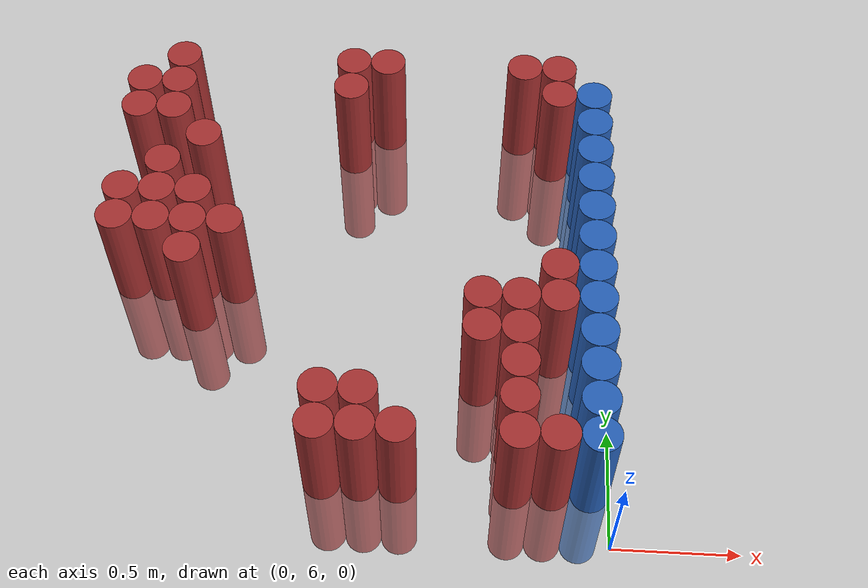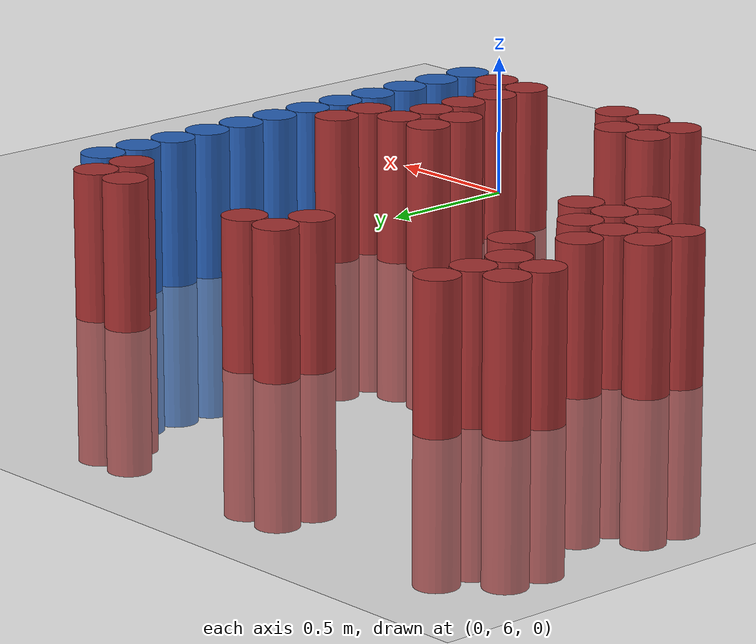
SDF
<sdf version="1.6">
 <world name="default">
  <model name="ground_plane">
   <static>1</static>
   <link name="link">
    <collision name="collision">
     <geometry><plane><normal>0 0 1</normal><size>100 100</size></plane></geometry>
     <surface><friction><ode><mu>100</mu><mu2>50</mu2></ode></friction></surface>
    </collision>
    <visual name="visual">
     <cast_shadows>0</cast_shadows>
     <geometry><plane><normal>0 0 1</normal><size>100 100</size></plane></geometry>
     <material>
      <script><uri>file://media/materials/scripts/gazebo.material</uri><name>Gazebo/Grey</name></script>
     </material>
    </visual>
   </link>
  </model>
  <model name="unit_cylinder_217">
   <static>1</static>
   <pose>-2.025000 7.125000 0.000000 0.000000 0.000000 0.000000</pose>
   <link name="link">
    <inertial>
     <mass>1</mass>
     <inertia><ixx>0.145833</ixx><ixy>0</ixy><ixz>0</ixz><iyy>0.145833</iyy><iyz>0</iyz><izz>0.125</izz></inertia>
    </inertial>
    <collision name="collision">
     <geometry><cylinder><radius>0.075000</radius><length>1</length></cylinder></geometry>
    </collision>
    <visual name="visual">
     <geometry><cylinder><radius>0.075000</radius><length>1</length></cylinder></geometry>
     <material>
      <ambient>0.648000 0.192000 0.192000 1</ambient>
      <diffuse>0.648000 0.192000 0.192000 1</diffuse>
     </material>
     <material>
      <script><name>Gazebo/Grey</name><uri>file://media/materials/scripts/gazebo.material</uri></script>
     </material>
    </visual>
   </link>
  </model>
  <model name="unit_cylinder_218">
   <static>1</static>
   <pose>-2.025000 7.275000 0.000000 0.000000 0.000000 0.000000</pose>
   <link name="link">
    <inertial>
     <mass>1</mass>
     <inertia><ixx>0.145833</ixx><ixy>0</ixy><ixz>0</ixz><iyy>0.145833</iyy><iyz>0</iyz><izz>0.125</izz></inertia>
    </inertial>
    <collision name="collision">
     <geometry><cylinder><radius>0.075000</radius><length>1</length></cylinder></geometry>
    </collision>
    <visual name="visual">
     <geometry><cylinder><radius>0.075000</radius><length>1</length></cylinder></geometry>
     <material>
      <ambient>0.648000 0.192000 0.192000 1</ambient>
      <diffuse>0.648000 0.192000 0.192000 1</diffuse>
     </material>
     <material>
      <script><name>Gazebo/Grey</name><uri>file://media/materials/scripts/gazebo.material</uri></script>
     </material>
    </visual>
   </link>
  </model>
  <model name="unit_cylinder_219">
   <static>1</static>
   <pose>-2.025000 7.725000 0.000000 0.000000 0.000000 0.000000</pose>
   <link name="link">
    <inertial>
     <mass>1</mass>
     <inertia><ixx>0.145833</ixx><ixy>0</ixy><ixz>0</ixz><iyy>0.145833</iyy><iyz>0</iyz><izz>0.125</izz></inertia>
    </inertial>
    <collision name="collision">
     <geometry><cylinder><radius>0.075000</radius><length>1</length></cylinder></geometry>
    </collision>
    <visual name="visual">
     <geometry><cylinder><radius>0.075000</radius><length>1</length></cylinder></geometry>
     <material>
      <ambient>0.648000 0.192000 0.192000 1</ambient>
      <diffuse>0.648000 0.192000 0.192000 1</diffuse>
     </material>
     <material>
      <script><name>Gazebo/Grey</name><uri>file://media/materials/scripts/gazebo.material</uri></script>
     </material>
    </visual>
   </link>
  </model>
  <model name="unit_cylinder_220">
   <static>1</static>
   <pose>-2.025000 7.875000 0.000000 0.000000 0.000000 0.000000</pose>
   <link name="link">
    <inertial>
     <mass>1</mass>
     <inertia><ixx>0.145833</ixx><ixy>0</ixy><ixz>0</ixz><iyy>0.145833</iyy><iyz>0</iyz><izz>0.125</izz></inertia>
    </inertial>
    <collision name="collision">
     <geometry><cylinder><radius>0.075000</radius><length>1</length></cylinder></geometry>
    </collision>
    <visual name="visual">
     <geometry><cylinder><radius>0.075000</radius><length>1</length></cylinder></geometry>
     <material>
      <ambient>0.648000 0.192000 0.192000 1</ambient>
      <diffuse>0.648000 0.192000 0.192000 1</diffuse>
     </material>
     <material>
      <script><name>Gazebo/Grey</name><uri>file://media/materials/scripts/gazebo.material</uri></script>
     </material>
    </visual>
   </link>
  </model>
  <model name="unit_cylinder_221">
   <static>1</static>
   <pose>-1.875000 7.125000 0.000000 0.000000 0.000000 0.000000</pose>
   <link name="link">
    <inertial>
     <mass>1</mass>
     <inertia><ixx>0.145833</ixx><ixy>0</ixy><ixz>0</ixz><iyy>0.145833</iyy><iyz>0</iyz><izz>0.125</izz></inertia>
    </inertial>
    <collision name="collision">
     <geometry><cylinder><radius>0.075000</radius><length>1</length></cylinder></geometry>
    </collision>
    <visual name="visual">
     <geometry><cylinder><radius>0.075000</radius><length>1</length></cylinder></geometry>
     <material>
      <ambient>0.648000 0.192000 0.192000 1</ambient>
      <diffuse>0.648000 0.192000 0.192000 1</diffuse>
     </material>
     <material>
      <script><name>Gazebo/Grey</name><uri>file://media/materials/scripts/gazebo.material</uri></script>
     </material>
    </visual>
   </link>
  </model>
  <model name="unit_cylinder_222">
   <static>1</static>
   <pose>-1.875000 7.275000 0.000000 0.000000 0.000000 0.000000</pose>
   <link name="link">
    <inertial>
     <mass>1</mass>
     <inertia><ixx>0.145833</ixx><ixy>0</ixy><ixz>0</ixz><iyy>0.145833</iyy><iyz>0</iyz><izz>0.125</izz></inertia>
    </inertial>
    <collision name="collision">
     <geometry><cylinder><radius>0.075000</radius><length>1</length></cylinder></geometry>
    </collision>
    <visual name="visual">
     <geometry><cylinder><radius>0.075000</radius><length>1</length></cylinder></geometry>
     <material>
      <ambient>0.648000 0.192000 0.192000 1</ambient>
      <diffuse>0.648000 0.192000 0.192000 1</diffuse>
     </material>
     <material>
      <script><name>Gazebo/Grey</name><uri>file://media/materials/scripts/gazebo.material</uri></script>
     </material>
    </visual>
   </link>
  </model>
  <model name="unit_cylinder_223">
   <static>1</static>
   <pose>-1.875000 7.425000 0.000000 0.000000 0.000000 0.000000</pose>
   <link name="link">
    <inertial>
     <mass>1</mass>
     <inertia><ixx>0.145833</ixx><ixy>0</ixy><ixz>0</ixz><iyy>0.145833</iyy><iyz>0</iyz><izz>0.125</izz></inertia>
    </inertial>
    <collision name="collision">
     <geometry><cylinder><radius>0.075000</radius><length>1</length></cylinder></geometry>
    </collision>
    <visual name="visual">
     <geometry><cylinder><radius>0.075000</radius><length>1</length></cylinder></geometry>
     <material>
      <ambient>0.648000 0.192000 0.192000 1</ambient>
      <diffuse>0.648000 0.192000 0.192000 1</diffuse>
     </material>
     <material>
      <script><name>Gazebo/Grey</name><uri>file://media/materials/scripts/gazebo.material</uri></script>
     </material>
    </visual>
   </link>
  </model>
  <model name="unit_cylinder_224">
   <static>1</static>
   <pose>-1.875000 7.725000 0.000000 0.000000 0.000000 0.000000</pose>
   <link name="link">
    <inertial>
     <mass>1</mass>
     <inertia><ixx>0.145833</ixx><ixy>0</ixy><ixz>0</ixz><iyy>0.145833</iyy><iyz>0</iyz><izz>0.125</izz></inertia>
    </inertial>
    <collision name="collision">
     <geometry><cylinder><radius>0.075000</radius><length>1</length></cylinder></geometry>
    </collision>
    <visual name="visual">
     <geometry><cylinder><radius>0.075000</radius><length>1</length></cylinder></geometry>
     <material>
      <ambient>0.648000 0.192000 0.192000 1</ambient>
      <diffuse>0.648000 0.192000 0.192000 1</diffuse>
     </material>
     <material>
      <script><name>Gazebo/Grey</name><uri>file://media/materials/scripts/gazebo.material</uri></script>
     </material>
    </visual>
   </link>
  </model>
  <model name="unit_cylinder_225">
   <static>1</static>
   <pose>-1.875000 7.875000 0.000000 0.000000 0.000000 0.000000</pose>
   <link name="link">
    <inertial>
     <mass>1</mass>
     <inertia><ixx>0.145833</ixx><ixy>0</ixy><ixz>0</ixz><iyy>0.145833</iyy><iyz>0</iyz><izz>0.125</izz></inertia>
    </inertial>
    <collision name="collision">
     <geometry><cylinder><radius>0.075000</radius><length>1</length></cylinder></geometry>
    </collision>
    <visual name="visual">
     <geometry><cylinder><radius>0.075000</radius><length>1</length></cylinder></geometry>
     <material>
      <ambient>0.648000 0.192000 0.192000 1</ambient>
      <diffuse>0.648000 0.192000 0.192000 1</diffuse>
     </material>
     <material>
      <script><name>Gazebo/Grey</name><uri>file://media/materials/scripts/gazebo.material</uri></script>
     </material>
    </visual>
   </link>
  </model>
  <model name="unit_cylinder_226">
   <static>1</static>
   <pose>-1.875000 8.025000 0.000000 0.000000 0.000000 0.000000</pose>
   <link name="link">
    <inertial>
     <mass>1</mass>
     <inertia><ixx>0.145833</ixx><ixy>0</ixy><ixz>0</ixz><iyy>0.145833</iyy><iyz>0</iyz><izz>0.125</izz></inertia>
    </inertial>
    <collision name="collision">
     <geometry><cylinder><radius>0.075000</radius><length>1</length></cylinder></geometry>
    </collision>
    <visual name="visual">
     <geometry><cylinder><radius>0.075000</radius><length>1</length></cylinder></geometry>
     <material>
      <ambient>0.648000 0.192000 0.192000 1</ambient>
      <diffuse>0.648000 0.192000 0.192000 1</diffuse>
     </material>
     <material>
      <script><name>Gazebo/Grey</name><uri>file://media/materials/scripts/gazebo.material</uri></script>
     </material>
    </visual>
   </link>
  </model>
  <model name="unit_cylinder_227">
   <static>1</static>
   <pose>-1.725000 6.975000 0.000000 0.000000 0.000000 0.000000</pose>
   <link name="link">
    <inertial>
     <mass>1</mass>
     <inertia><ixx>0.145833</ixx><ixy>0</ixy><ixz>0</ixz><iyy>0.145833</iyy><iyz>0</iyz><izz>0.125</izz></inertia>
    </inertial>
    <collision name="collision">
     <geometry><cylinder><radius>0.075000</radius><length>1</length></cylinder></geometry>
    </collision>
    <visual name="visual">
     <geometry><cylinder><radius>0.075000</radius><length>1</length></cylinder></geometry>
     <material>
      <ambient>0.648000 0.192000 0.192000 1</ambient>
      <diffuse>0.648000 0.192000 0.192000 1</diffuse>
     </material>
     <material>
      <script><name>Gazebo/Grey</name><uri>file://media/materials/scripts/gazebo.material</uri></script>
     </material>
    </visual>
   </link>
  </model>
  <model name="unit_cylinder_228">
   <static>1</static>
   <pose>-1.725000 7.125000 0.000000 0.000000 0.000000 0.000000</pose>
   <link name="link">
    <inertial>
     <mass>1</mass>
     <inertia><ixx>0.145833</ixx><ixy>0</ixy><ixz>0</ixz><iyy>0.145833</iyy><iyz>0</iyz><izz>0.125</izz></inertia>
    </inertial>
    <collision name="collision">
     <geometry><cylinder><radius>0.075000</radius><length>1</length></cylinder></geometry>
    </collision>
    <visual name="visual">
     <geometry><cylinder><radius>0.075000</radius><length>1</length></cylinder></geometry>
     <material>
      <ambient>0.648000 0.192000 0.192000 1</ambient>
      <diffuse>0.648000 0.192000 0.192000 1</diffuse>
     </material>
     <material>
      <script><name>Gazebo/Grey</name><uri>file://media/materials/scripts/gazebo.material</uri></script>
     </material>
    </visual>
   </link>
  </model>
  <model name="unit_cylinder_229">
   <static>1</static>
   <pose>-1.725000 7.275000 0.000000 0.000000 0.000000 0.000000</pose>
   <link name="link">
    <inertial>
     <mass>1</mass>
     <inertia><ixx>0.145833</ixx><ixy>0</ixy><ixz>0</ixz><iyy>0.145833</iyy><iyz>0</iyz><izz>0.125</izz></inertia>
    </inertial>
    <collision name="collision">
     <geometry><cylinder><radius>0.075000</radius><length>1</length></cylinder></geometry>
    </collision>
    <visual name="visual">
     <geometry><cylinder><radius>0.075000</radius><length>1</length></cylinder></geometry>
     <material>
      <ambient>0.648000 0.192000 0.192000 1</ambient>
      <diffuse>0.648000 0.192000 0.192000 1</diffuse>
     </material>
     <material>
      <script><name>Gazebo/Grey</name><uri>file://media/materials/scripts/gazebo.material</uri></script>
     </material>
    </visual>
   </link>
  </model>
  <model name="unit_cylinder_230">
   <static>1</static>
   <pose>-1.725000 7.575000 0.000000 0.000000 0.000000 0.000000</pose>
   <link name="link">
    <inertial>
     <mass>1</mass>
     <inertia><ixx>0.145833</ixx><ixy>0</ixy><ixz>0</ixz><iyy>0.145833</iyy><iyz>0</iyz><izz>0.125</izz></inertia>
    </inertial>
    <collision name="collision">
     <geometry><cylinder><radius>0.075000</radius><length>1</length></cylinder></geometry>
    </collision>
    <visual name="visual">
     <geometry><cylinder><radius>0.075000</radius><length>1</length></cylinder></geometry>
     <material>
      <ambient>0.648000 0.192000 0.192000 1</ambient>
      <diffuse>0.648000 0.192000 0.192000 1</diffuse>
     </material>
     <material>
      <script><name>Gazebo/Grey</name><uri>file://media/materials/scripts/gazebo.material</uri></script>
     </material>
    </visual>
   </link>
  </model>
  <model name="unit_cylinder_231">
   <static>1</static>
   <pose>-1.575000 7.125000 0.000000 0.000000 0.000000 0.000000</pose>
   <link name="link">
    <inertial>
     <mass>1</mass>
     <inertia><ixx>0.145833</ixx><ixy>0</ixy><ixz>0</ixz><iyy>0.145833</iyy><iyz>0</iyz><izz>0.125</izz></inertia>
    </inertial>
    <collision name="collision">
     <geometry><cylinder><radius>0.075000</radius><length>1</length></cylinder></geometry>
    </collision>
    <visual name="visual">
     <geometry><cylinder><radius>0.075000</radius><length>1</length></cylinder></geometry>
     <material>
      <ambient>0.648000 0.192000 0.192000 1</ambient>
      <diffuse>0.648000 0.192000 0.192000 1</diffuse>
     </material>
     <material>
      <script><name>Gazebo/Grey</name><uri>file://media/materials/scripts/gazebo.material</uri></script>
     </material>
    </visual>
   </link>
  </model>
  <model name="unit_cylinder_239">
   <static>1</static>
   <pose>-1.125000 6.225000 0.000000 0.000000 0.000000 0.000000</pose>
   <link name="link">
    <inertial>
     <mass>1</mass>
     <inertia><ixx>0.145833</ixx><ixy>0</ixy><ixz>0</ixz><iyy>0.145833</iyy><iyz>0</iyz><izz>0.125</izz></inertia>
    </inertial>
    <collision name="collision">
     <geometry><cylinder><radius>0.075000</radius><length>1</length></cylinder></geometry>
    </collision>
    <visual name="visual">
     <geometry><cylinder><radius>0.075000</radius><length>1</length></cylinder></geometry>
     <material>
      <ambient>0.648000 0.192000 0.192000 1</ambient>
      <diffuse>0.648000 0.192000 0.192000 1</diffuse>
     </material>
     <material>
      <script><name>Gazebo/Grey</name><uri>file://media/materials/scripts/gazebo.material</uri></script>
     </material>
    </visual>
   </link>
  </model>
  <model name="unit_cylinder_240">
   <static>1</static>
   <pose>-1.125000 6.375000 0.000000 0.000000 0.000000 0.000000</pose>
   <link name="link">
    <inertial>
     <mass>1</mass>
     <inertia><ixx>0.145833</ixx><ixy>0</ixy><ixz>0</ixz><iyy>0.145833</iyy><iyz>0</iyz><izz>0.125</izz></inertia>
    </inertial>
    <collision name="collision">
     <geometry><cylinder><radius>0.075000</radius><length>1</length></cylinder></geometry>
    </collision>
    <visual name="visual">
     <geometry><cylinder><radius>0.075000</radius><length>1</length></cylinder></geometry>
     <material>
      <ambient>0.648000 0.192000 0.192000 1</ambient>
      <diffuse>0.648000 0.192000 0.192000 1</diffuse>
     </material>
     <material>
      <script><name>Gazebo/Grey</name><uri>file://media/materials/scripts/gazebo.material</uri></script>
     </material>
    </visual>
   </link>
  </model>
  <model name="unit_cylinder_241">
   <static>1</static>
   <pose>-1.125000 7.875000 0.000000 0.000000 0.000000 0.000000</pose>
   <link name="link">
    <inertial>
     <mass>1</mass>
     <inertia><ixx>0.145833</ixx><ixy>0</ixy><ixz>0</ixz><iyy>0.145833</iyy><iyz>0</iyz><izz>0.125</izz></inertia>
    </inertial>
    <collision name="collision">
     <geometry><cylinder><radius>0.075000</radius><length>1</length></cylinder></geometry>
    </collision>
    <visual name="visual">
     <geometry><cylinder><radius>0.075000</radius><length>1</length></cylinder></geometry>
     <material>
      <ambient>0.648000 0.192000 0.192000 1</ambient>
      <diffuse>0.648000 0.192000 0.192000 1</diffuse>
     </material>
     <material>
      <script><name>Gazebo/Grey</name><uri>file://media/materials/scripts/gazebo.material</uri></script>
     </material>
    </visual>
   </link>
  </model>
  <model name="unit_cylinder_242">
   <static>1</static>
   <pose>-1.125000 8.025000 0.000000 0.000000 0.000000 0.000000</pose>
   <link name="link">
    <inertial>
     <mass>1</mass>
     <inertia><ixx>0.145833</ixx><ixy>0</ixy><ixz>0</ixz><iyy>0.145833</iyy><iyz>0</iyz><izz>0.125</izz></inertia>
    </inertial>
    <collision name="collision">
     <geometry><cylinder><radius>0.075000</radius><length>1</length></cylinder></geometry>
    </collision>
    <visual name="visual">
     <geometry><cylinder><radius>0.075000</radius><length>1</length></cylinder></geometry>
     <material>
      <ambient>0.648000 0.192000 0.192000 1</ambient>
      <diffuse>0.648000 0.192000 0.192000 1</diffuse>
     </material>
     <material>
      <script><name>Gazebo/Grey</name><uri>file://media/materials/scripts/gazebo.material</uri></script>
     </material>
    </visual>
   </link>
  </model>
  <model name="unit_cylinder_251">
   <static>1</static>
   <pose>-0.975000 6.225000 0.000000 0.000000 0.000000 0.000000</pose>
   <link name="link">
    <inertial>
     <mass>1</mass>
     <inertia><ixx>0.145833</ixx><ixy>0</ixy><ixz>0</ixz><iyy>0.145833</iyy><iyz>0</iyz><izz>0.125</izz></inertia>
    </inertial>
    <collision name="collision">
     <geometry><cylinder><radius>0.075000</radius><length>1</length></cylinder></geometry>
    </collision>
    <visual name="visual">
     <geometry><cylinder><radius>0.075000</radius><length>1</length></cylinder></geometry>
     <material>
      <ambient>0.648000 0.192000 0.192000 1</ambient>
      <diffuse>0.648000 0.192000 0.192000 1</diffuse>
     </material>
     <material>
      <script><name>Gazebo/Grey</name><uri>file://media/materials/scripts/gazebo.material</uri></script>
     </material>
    </visual>
   </link>
  </model>
  <model name="unit_cylinder_252">
   <static>1</static>
   <pose>-0.975000 6.375000 0.000000 0.000000 0.000000 0.000000</pose>
   <link name="link">
    <inertial>
     <mass>1</mass>
     <inertia><ixx>0.145833</ixx><ixy>0</ixy><ixz>0</ixz><iyy>0.145833</iyy><iyz>0</iyz><izz>0.125</izz></inertia>
    </inertial>
    <collision name="collision">
     <geometry><cylinder><radius>0.075000</radius><length>1</length></cylinder></geometry>
    </collision>
    <visual name="visual">
     <geometry><cylinder><radius>0.075000</radius><length>1</length></cylinder></geometry>
     <material>
      <ambient>0.648000 0.192000 0.192000 1</ambient>
      <diffuse>0.648000 0.192000 0.192000 1</diffuse>
     </material>
     <material>
      <script><name>Gazebo/Grey</name><uri>file://media/materials/scripts/gazebo.material</uri></script>
     </material>
    </visual>
   </link>
  </model>
  <model name="unit_cylinder_253">
   <static>1</static>
   <pose>-0.975000 8.025000 0.000000 0.000000 0.000000 0.000000</pose>
   <link name="link">
    <inertial>
     <mass>1</mass>
     <inertia><ixx>0.145833</ixx><ixy>0</ixy><ixz>0</ixz><iyy>0.145833</iyy><iyz>0</iyz><izz>0.125</izz></inertia>
    </inertial>
    <collision name="collision">
     <geometry><cylinder><radius>0.075000</radius><length>1</length></cylinder></geometry>
    </collision>
    <visual name="visual">
     <geometry><cylinder><radius>0.075000</radius><length>1</length></cylinder></geometry>
     <material>
      <ambient>0.648000 0.192000 0.192000 1</ambient>
      <diffuse>0.648000 0.192000 0.192000 1</diffuse>
     </material>
     <material>
      <script><name>Gazebo/Grey</name><uri>file://media/materials/scripts/gazebo.material</uri></script>
     </material>
    </visual>
   </link>
  </model>
  <model name="unit_cylinder_264">
   <static>1</static>
   <pose>-0.825000 6.225000 0.000000 0.000000 0.000000 0.000000</pose>
   <link name="link">
    <inertial>
     <mass>1</mass>
     <inertia><ixx>0.145833</ixx><ixy>0</ixy><ixz>0</ixz><iyy>0.145833</iyy><iyz>0</iyz><izz>0.125</izz></inertia>
    </inertial>
    <collision name="collision">
     <geometry><cylinder><radius>0.075000</radius><length>1</length></cylinder></geometry>
    </collision>
    <visual name="visual">
     <geometry><cylinder><radius>0.075000</radius><length>1</length></cylinder></geometry>
     <material>
      <ambient>0.648000 0.192000 0.192000 1</ambient>
      <diffuse>0.648000 0.192000 0.192000 1</diffuse>
     </material>
     <material>
      <script><name>Gazebo/Grey</name><uri>file://media/materials/scripts/gazebo.material</uri></script>
     </material>
    </visual>
   </link>
  </model>
  <model name="unit_cylinder_275">
   <static>1</static>
   <pose>-0.525000 6.675000 0.000000 0.000000 0.000000 0.000000</pose>
   <link name="link">
    <inertial>
     <mass>1</mass>
     <inertia><ixx>0.145833</ixx><ixy>0</ixy><ixz>0</ixz><iyy>0.145833</iyy><iyz>0</iyz><izz>0.125</izz></inertia>
    </inertial>
    <collision name="collision">
     <geometry><cylinder><radius>0.075000</radius><length>1</length></cylinder></geometry>
    </collision>
    <visual name="visual">
     <geometry><cylinder><radius>0.075000</radius><length>1</length></cylinder></geometry>
     <material>
      <ambient>0.648000 0.192000 0.192000 1</ambient>
      <diffuse>0.648000 0.192000 0.192000 1</diffuse>
     </material>
     <material>
      <script><name>Gazebo/Grey</name><uri>file://media/materials/scripts/gazebo.material</uri></script>
     </material>
    </visual>
   </link>
  </model>
  <model name="unit_cylinder_276">
   <static>1</static>
   <pose>-0.525000 6.825000 0.000000 0.000000 0.000000 0.000000</pose>
   <link name="link">
    <inertial>
     <mass>1</mass>
     <inertia><ixx>0.145833</ixx><ixy>0</ixy><ixz>0</ixz><iyy>0.145833</iyy><iyz>0</iyz><izz>0.125</izz></inertia>
    </inertial>
    <collision name="collision">
     <geometry><cylinder><radius>0.075000</radius><length>1</length></cylinder></geometry>
    </collision>
    <visual name="visual">
     <geometry><cylinder><radius>0.075000</radius><length>1</length></cylinder></geometry>
     <material>
      <ambient>0.648000 0.192000 0.192000 1</ambient>
      <diffuse>0.648000 0.192000 0.192000 1</diffuse>
     </material>
     <material>
      <script><name>Gazebo/Grey</name><uri>file://media/materials/scripts/gazebo.material</uri></script>
     </material>
    </visual>
   </link>
  </model>
  <model name="unit_cylinder_282">
   <static>1</static>
   <pose>-0.375000 6.225000 0.000000 0.000000 0.000000 0.000000</pose>
   <link name="link">
    <inertial>
     <mass>1</mass>
     <inertia><ixx>0.145833</ixx><ixy>0</ixy><ixz>0</ixz><iyy>0.145833</iyy><iyz>0</iyz><izz>0.125</izz></inertia>
    </inertial>
    <collision name="collision">
     <geometry><cylinder><radius>0.075000</radius><length>1</length></cylinder></geometry>
    </collision>
    <visual name="visual">
     <geometry><cylinder><radius>0.075000</radius><length>1</length></cylinder></geometry>
     <material>
      <ambient>0.648000 0.192000 0.192000 1</ambient>
      <diffuse>0.648000 0.192000 0.192000 1</diffuse>
     </material>
     <material>
      <script><name>Gazebo/Grey</name><uri>file://media/materials/scripts/gazebo.material</uri></script>
     </material>
    </visual>
   </link>
  </model>
  <model name="unit_cylinder_283">
   <static>1</static>
   <pose>-0.375000 6.375000 0.000000 0.000000 0.000000 0.000000</pose>
   <link name="link">
    <inertial>
     <mass>1</mass>
     <inertia><ixx>0.145833</ixx><ixy>0</ixy><ixz>0</ixz><iyy>0.145833</iyy><iyz>0</iyz><izz>0.125</izz></inertia>
    </inertial>
    <collision name="collision">
     <geometry><cylinder><radius>0.075000</radius><length>1</length></cylinder></geometry>
    </collision>
    <visual name="visual">
     <geometry><cylinder><radius>0.075000</radius><length>1</length></cylinder></geometry>
     <material>
      <ambient>0.648000 0.192000 0.192000 1</ambient>
      <diffuse>0.648000 0.192000 0.192000 1</diffuse>
     </material>
     <material>
      <script><name>Gazebo/Grey</name><uri>file://media/materials/scripts/gazebo.material</uri></script>
     </material>
    </visual>
   </link>
  </model>
  <model name="unit_cylinder_284">
   <static>1</static>
   <pose>-0.375000 6.525000 0.000000 0.000000 0.000000 0.000000</pose>
   <link name="link">
    <inertial>
     <mass>1</mass>
     <inertia><ixx>0.145833</ixx><ixy>0</ixy><ixz>0</ixz><iyy>0.145833</iyy><iyz>0</iyz><izz>0.125</izz></inertia>
    </inertial>
    <collision name="collision">
     <geometry><cylinder><radius>0.075000</radius><length>1</length></cylinder></geometry>
    </collision>
    <visual name="visual">
     <geometry><cylinder><radius>0.075000</radius><length>1</length></cylinder></geometry>
     <material>
      <ambient>0.648000 0.192000 0.192000 1</ambient>
      <diffuse>0.648000 0.192000 0.192000 1</diffuse>
     </material>
     <material>
      <script><name>Gazebo/Grey</name><uri>file://media/materials/scripts/gazebo.material</uri></script>
     </material>
    </visual>
   </link>
  </model>
  <model name="unit_cylinder_285">
   <static>1</static>
   <pose>-0.375000 6.675000 0.000000 0.000000 0.000000 0.000000</pose>
   <link name="link">
    <inertial>
     <mass>1</mass>
     <inertia><ixx>0.145833</ixx><ixy>0</ixy><ixz>0</ixz><iyy>0.145833</iyy><iyz>0</iyz><izz>0.125</izz></inertia>
    </inertial>
    <collision name="collision">
     <geometry><cylinder><radius>0.075000</radius><length>1</length></cylinder></geometry>
    </collision>
    <visual name="visual">
     <geometry><cylinder><radius>0.075000</radius><length>1</length></cylinder></geometry>
     <material>
      <ambient>0.648000 0.192000 0.192000 1</ambient>
      <diffuse>0.648000 0.192000 0.192000 1</diffuse>
     </material>
     <material>
      <script><name>Gazebo/Grey</name><uri>file://media/materials/scripts/gazebo.material</uri></script>
     </material>
    </visual>
   </link>
  </model>
  <model name="unit_cylinder_286">
   <static>1</static>
   <pose>-0.375000 6.825000 0.000000 0.000000 0.000000 0.000000</pose>
   <link name="link">
    <inertial>
     <mass>1</mass>
     <inertia><ixx>0.145833</ixx><ixy>0</ixy><ixz>0</ixz><iyy>0.145833</iyy><iyz>0</iyz><izz>0.125</izz></inertia>
    </inertial>
    <collision name="collision">
     <geometry><cylinder><radius>0.075000</radius><length>1</length></cylinder></geometry>
    </collision>
    <visual name="visual">
     <geometry><cylinder><radius>0.075000</radius><length>1</length></cylinder></geometry>
     <material>
      <ambient>0.648000 0.192000 0.192000 1</ambient>
      <diffuse>0.648000 0.192000 0.192000 1</diffuse>
     </material>
     <material>
      <script><name>Gazebo/Grey</name><uri>file://media/materials/scripts/gazebo.material</uri></script>
     </material>
    </visual>
   </link>
  </model>
  <model name="unit_cylinder_287">
   <static>1</static>
   <pose>-0.375000 8.025000 0.000000 0.000000 0.000000 0.000000</pose>
   <link name="link">
    <inertial>
     <mass>1</mass>
     <inertia><ixx>0.145833</ixx><ixy>0</ixy><ixz>0</ixz><iyy>0.145833</iyy><iyz>0</iyz><izz>0.125</izz></inertia>
    </inertial>
    <collision name="collision">
     <geometry><cylinder><radius>0.075000</radius><length>1</length></cylinder></geometry>
    </collision>
    <visual name="visual">
     <geometry><cylinder><radius>0.075000</radius><length>1</length></cylinder></geometry>
     <material>
      <ambient>0.648000 0.192000 0.192000 1</ambient>
      <diffuse>0.648000 0.192000 0.192000 1</diffuse>
     </material>
     <material>
      <script><name>Gazebo/Grey</name><uri>file://media/materials/scripts/gazebo.material</uri></script>
     </material>
    </visual>
   </link>
  </model>
  <model name="unit_cylinder_296">
   <static>1</static>
   <pose>-0.225000 6.225000 0.000000 0.000000 0.000000 0.000000</pose>
   <link name="link">
    <inertial>
     <mass>1</mass>
     <inertia><ixx>0.145833</ixx><ixy>0</ixy><ixz>0</ixz><iyy>0.145833</iyy><iyz>0</iyz><izz>0.125</izz></inertia>
    </inertial>
    <collision name="collision">
     <geometry><cylinder><radius>0.075000</radius><length>1</length></cylinder></geometry>
    </collision>
    <visual name="visual">
     <geometry><cylinder><radius>0.075000</radius><length>1</length></cylinder></geometry>
     <material>
      <ambient>0.648000 0.192000 0.192000 1</ambient>
      <diffuse>0.648000 0.192000 0.192000 1</diffuse>
     </material>
     <material>
      <script><name>Gazebo/Grey</name><uri>file://media/materials/scripts/gazebo.material</uri></script>
     </material>
    </visual>
   </link>
  </model>
  <model name="unit_cylinder_297">
   <static>1</static>
   <pose>-0.225000 6.825000 0.000000 0.000000 0.000000 0.000000</pose>
   <link name="link">
    <inertial>
     <mass>1</mass>
     <inertia><ixx>0.145833</ixx><ixy>0</ixy><ixz>0</ixz><iyy>0.145833</iyy><iyz>0</iyz><izz>0.125</izz></inertia>
    </inertial>
    <collision name="collision">
     <geometry><cylinder><radius>0.075000</radius><length>1</length></cylinder></geometry>
    </collision>
    <visual name="visual">
     <geometry><cylinder><radius>0.075000</radius><length>1</length></cylinder></geometry>
     <material>
      <ambient>0.648000 0.192000 0.192000 1</ambient>
      <diffuse>0.648000 0.192000 0.192000 1</diffuse>
     </material>
     <material>
      <script><name>Gazebo/Grey</name><uri>file://media/materials/scripts/gazebo.material</uri></script>
     </material>
    </visual>
   </link>
  </model>
  <model name="unit_cylinder_298">
   <static>1</static>
   <pose>-0.225000 6.975000 0.000000 0.000000 0.000000 0.000000</pose>
   <link name="link">
    <inertial>
     <mass>1</mass>
     <inertia><ixx>0.145833</ixx><ixy>0</ixy><ixz>0</ixz><iyy>0.145833</iyy><iyz>0</iyz><izz>0.125</izz></inertia>
    </inertial>
    <collision name="collision">
     <geometry><cylinder><radius>0.075000</radius><length>1</length></cylinder></geometry>
    </collision>
    <visual name="visual">
     <geometry><cylinder><radius>0.075000</radius><length>1</length></cylinder></geometry>
     <material>
      <ambient>0.648000 0.192000 0.192000 1</ambient>
      <diffuse>0.648000 0.192000 0.192000 1</diffuse>
     </material>
     <material>
      <script><name>Gazebo/Grey</name><uri>file://media/materials/scripts/gazebo.material</uri></script>
     </material>
    </visual>
   </link>
  </model>
  <model name="unit_cylinder_299">
   <static>1</static>
   <pose>-0.225000 7.875000 0.000000 0.000000 0.000000 0.000000</pose>
   <link name="link">
    <inertial>
     <mass>1</mass>
     <inertia><ixx>0.145833</ixx><ixy>0</ixy><ixz>0</ixz><iyy>0.145833</iyy><iyz>0</iyz><izz>0.125</izz></inertia>
    </inertial>
    <collision name="collision">
     <geometry><cylinder><radius>0.075000</radius><length>1</length></cylinder></geometry>
    </collision>
    <visual name="visual">
     <geometry><cylinder><radius>0.075000</radius><length>1</length></cylinder></geometry>
     <material>
      <ambient>0.648000 0.192000 0.192000 1</ambient>
      <diffuse>0.648000 0.192000 0.192000 1</diffuse>
     </material>
     <material>
      <script><name>Gazebo/Grey</name><uri>file://media/materials/scripts/gazebo.material</uri></script>
     </material>
    </visual>
   </link>
  </model>
  <model name="unit_cylinder_300">
   <static>1</static>
   <pose>-0.225000 8.025000 0.000000 0.000000 0.000000 0.000000</pose>
   <link name="link">
    <inertial>
     <mass>1</mass>
     <inertia><ixx>0.145833</ixx><ixy>0</ixy><ixz>0</ixz><iyy>0.145833</iyy><iyz>0</iyz><izz>0.125</izz></inertia>
    </inertial>
    <collision name="collision">
     <geometry><cylinder><radius>0.075000</radius><length>1</length></cylinder></geometry>
    </collision>
    <visual name="visual">
     <geometry><cylinder><radius>0.075000</radius><length>1</length></cylinder></geometry>
     <material>
      <ambient>0.648000 0.192000 0.192000 1</ambient>
      <diffuse>0.648000 0.192000 0.192000 1</diffuse>
     </material>
     <material>
      <script><name>Gazebo/Grey</name><uri>file://media/materials/scripts/gazebo.material</uri></script>
     </material>
    </visual>
   </link>
  </model>
  <model name="unit_cylinder_311">
   <static>1</static>
   <pose>-0.075000 6.225000 0.000000 0.000000 0.000000 0.000000</pose>
   <link name="link">
    <inertial>
     <mass>1</mass>
     <inertia><ixx>0.145833</ixx><ixy>0</ixy><ixz>0</ixz><iyy>0.145833</iyy><iyz>0</iyz><izz>0.125</izz></inertia>
    </inertial>
    <collision name="collision">
     <geometry><cylinder><radius>0.075000</radius><length>1</length></cylinder></geometry>
    </collision>
    <visual name="visual">
     <geometry><cylinder><radius>0.075000</radius><length>1</length></cylinder></geometry>
     <material>
      <ambient>0.152000 0.379000 0.720000 1</ambient>
      <diffuse>0.152000 0.379000 0.720000 1</diffuse>
     </material>
     <material>
      <script><name>Gazebo/Grey</name><uri>file://media/materials/scripts/gazebo.material</uri></script>
     </material>
    </visual>
   </link>
  </model>
  <model name="unit_cylinder_312">
   <static>1</static>
   <pose>-0.075000 6.375000 0.000000 0.000000 0.000000 0.000000</pose>
   <link name="link">
    <inertial>
     <mass>1</mass>
     <inertia><ixx>0.145833</ixx><ixy>0</ixy><ixz>0</ixz><iyy>0.145833</iyy><iyz>0</iyz><izz>0.125</izz></inertia>
    </inertial>
    <collision name="collision">
     <geometry><cylinder><radius>0.075000</radius><length>1</length></cylinder></geometry>
    </collision>
    <visual name="visual">
     <geometry><cylinder><radius>0.075000</radius><length>1</length></cylinder></geometry>
     <material>
      <ambient>0.152000 0.379000 0.720000 1</ambient>
      <diffuse>0.152000 0.379000 0.720000 1</diffuse>
     </material>
     <material>
      <script><name>Gazebo/Grey</name><uri>file://media/materials/scripts/gazebo.material</uri></script>
     </material>
    </visual>
   </link>
  </model>
  <model name="unit_cylinder_313">
   <static>1</static>
   <pose>-0.075000 6.525000 0.000000 0.000000 0.000000 0.000000</pose>
   <link name="link">
    <inertial>
     <mass>1</mass>
     <inertia><ixx>0.145833</ixx><ixy>0</ixy><ixz>0</ixz><iyy>0.145833</iyy><iyz>0</iyz><izz>0.125</izz></inertia>
    </inertial>
    <collision name="collision">
     <geometry><cylinder><radius>0.075000</radius><length>1</length></cylinder></geometry>
    </collision>
    <visual name="visual">
     <geometry><cylinder><radius>0.075000</radius><length>1</length></cylinder></geometry>
     <material>
      <ambient>0.152000 0.379000 0.720000 1</ambient>
      <diffuse>0.152000 0.379000 0.720000 1</diffuse>
     </material>
     <material>
      <script><name>Gazebo/Grey</name><uri>file://media/materials/scripts/gazebo.material</uri></script>
     </material>
    </visual>
   </link>
  </model>
  <model name="unit_cylinder_314">
   <static>1</static>
   <pose>-0.075000 6.675000 0.000000 0.000000 0.000000 0.000000</pose>
   <link name="link">
    <inertial>
     <mass>1</mass>
     <inertia><ixx>0.145833</ixx><ixy>0</ixy><ixz>0</ixz><iyy>0.145833</iyy><iyz>0</iyz><izz>0.125</izz></inertia>
    </inertial>
    <collision name="collision">
     <geometry><cylinder><radius>0.075000</radius><length>1</length></cylinder></geometry>
    </collision>
    <visual name="visual">
     <geometry><cylinder><radius>0.075000</radius><length>1</length></cylinder></geometry>
     <material>
      <ambient>0.152000 0.379000 0.720000 1</ambient>
      <diffuse>0.152000 0.379000 0.720000 1</diffuse>
     </material>
     <material>
      <script><name>Gazebo/Grey</name><uri>file://media/materials/scripts/gazebo.material</uri></script>
     </material>
    </visual>
   </link>
  </model>
  <model name="unit_cylinder_315">
   <static>1</static>
   <pose>-0.075000 6.825000 0.000000 0.000000 0.000000 0.000000</pose>
   <link name="link">
    <inertial>
     <mass>1</mass>
     <inertia><ixx>0.145833</ixx><ixy>0</ixy><ixz>0</ixz><iyy>0.145833</iyy><iyz>0</iyz><izz>0.125</izz></inertia>
    </inertial>
    <collision name="collision">
     <geometry><cylinder><radius>0.075000</radius><length>1</length></cylinder></geometry>
    </collision>
    <visual name="visual">
     <geometry><cylinder><radius>0.075000</radius><length>1</length></cylinder></geometry>
     <material>
      <ambient>0.152000 0.379000 0.720000 1</ambient>
      <diffuse>0.152000 0.379000 0.720000 1</diffuse>
     </material>
     <material>
      <script><name>Gazebo/Grey</name><uri>file://media/materials/scripts/gazebo.material</uri></script>
     </material>
    </visual>
   </link>
  </model>
  <model name="unit_cylinder_316">
   <static>1</static>
   <pose>-0.075000 6.975000 0.000000 0.000000 0.000000 0.000000</pose>
   <link name="link">
    <inertial>
     <mass>1</mass>
     <inertia><ixx>0.145833</ixx><ixy>0</ixy><ixz>0</ixz><iyy>0.145833</iyy><iyz>0</iyz><izz>0.125</izz></inertia>
    </inertial>
    <collision name="collision">
     <geometry><cylinder><radius>0.075000</radius><length>1</length></cylinder></geometry>
    </collision>
    <visual name="visual">
     <geometry><cylinder><radius>0.075000</radius><length>1</length></cylinder></geometry>
     <material>
      <ambient>0.152000 0.379000 0.720000 1</ambient>
      <diffuse>0.152000 0.379000 0.720000 1</diffuse>
     </material>
     <material>
      <script><name>Gazebo/Grey</name><uri>file://media/materials/scripts/gazebo.material</uri></script>
     </material>
    </visual>
   </link>
  </model>
  <model name="unit_cylinder_317">
   <static>1</static>
   <pose>-0.075000 7.125000 0.000000 0.000000 0.000000 0.000000</pose>
   <link name="link">
    <inertial>
     <mass>1</mass>
     <inertia><ixx>0.145833</ixx><ixy>0</ixy><ixz>0</ixz><iyy>0.145833</iyy><iyz>0</iyz><izz>0.125</izz></inertia>
    </inertial>
    <collision name="collision">
     <geometry><cylinder><radius>0.075000</radius><length>1</length></cylinder></geometry>
    </collision>
    <visual name="visual">
     <geometry><cylinder><radius>0.075000</radius><length>1</length></cylinder></geometry>
     <material>
      <ambient>0.152000 0.379000 0.720000 1</ambient>
      <diffuse>0.152000 0.379000 0.720000 1</diffuse>
     </material>
     <material>
      <script><name>Gazebo/Grey</name><uri>file://media/materials/scripts/gazebo.material</uri></script>
     </material>
    </visual>
   </link>
  </model>
  <model name="unit_cylinder_318">
   <static>1</static>
   <pose>-0.075000 7.275000 0.000000 0.000000 0.000000 0.000000</pose>
   <link name="link">
    <inertial>
     <mass>1</mass>
     <inertia><ixx>0.145833</ixx><ixy>0</ixy><ixz>0</ixz><iyy>0.145833</iyy><iyz>0</iyz><izz>0.125</izz></inertia>
    </inertial>
    <collision name="collision">
     <geometry><cylinder><radius>0.075000</radius><length>1</length></cylinder></geometry>
    </collision>
    <visual name="visual">
     <geometry><cylinder><radius>0.075000</radius><length>1</length></cylinder></geometry>
     <material>
      <ambient>0.152000 0.379000 0.720000 1</ambient>
      <diffuse>0.152000 0.379000 0.720000 1</diffuse>
     </material>
     <material>
      <script><name>Gazebo/Grey</name><uri>file://media/materials/scripts/gazebo.material</uri></script>
     </material>
    </visual>
   </link>
  </model>
  <model name="unit_cylinder_319">
   <static>1</static>
   <pose>-0.075000 7.425000 0.000000 0.000000 0.000000 0.000000</pose>
   <link name="link">
    <inertial>
     <mass>1</mass>
     <inertia><ixx>0.145833</ixx><ixy>0</ixy><ixz>0</ixz><iyy>0.145833</iyy><iyz>0</iyz><izz>0.125</izz></inertia>
    </inertial>
    <collision name="collision">
     <geometry><cylinder><radius>0.075000</radius><length>1</length></cylinder></geometry>
    </collision>
    <visual name="visual">
     <geometry><cylinder><radius>0.075000</radius><length>1</length></cylinder></geometry>
     <material>
      <ambient>0.152000 0.379000 0.720000 1</ambient>
      <diffuse>0.152000 0.379000 0.720000 1</diffuse>
     </material>
     <material>
      <script><name>Gazebo/Grey</name><uri>file://media/materials/scripts/gazebo.material</uri></script>
     </material>
    </visual>
   </link>
  </model>
  <model name="unit_cylinder_320">
   <static>1</static>
   <pose>-0.075000 7.575000 0.000000 0.000000 0.000000 0.000000</pose>
   <link name="link">
    <inertial>
     <mass>1</mass>
     <inertia><ixx>0.145833</ixx><ixy>0</ixy><ixz>0</ixz><iyy>0.145833</iyy><iyz>0</iyz><izz>0.125</izz></inertia>
    </inertial>
    <collision name="collision">
     <geometry><cylinder><radius>0.075000</radius><length>1</length></cylinder></geometry>
    </collision>
    <visual name="visual">
     <geometry><cylinder><radius>0.075000</radius><length>1</length></cylinder></geometry>
     <material>
      <ambient>0.152000 0.379000 0.720000 1</ambient>
      <diffuse>0.152000 0.379000 0.720000 1</diffuse>
     </material>
     <material>
      <script><name>Gazebo/Grey</name><uri>file://media/materials/scripts/gazebo.material</uri></script>
     </material>
    </visual>
   </link>
  </model>
  <model name="unit_cylinder_321">
   <static>1</static>
   <pose>-0.075000 7.725000 0.000000 0.000000 0.000000 0.000000</pose>
   <link name="link">
    <inertial>
     <mass>1</mass>
     <inertia><ixx>0.145833</ixx><ixy>0</ixy><ixz>0</ixz><iyy>0.145833</iyy><iyz>0</iyz><izz>0.125</izz></inertia>
    </inertial>
    <collision name="collision">
     <geometry><cylinder><radius>0.075000</radius><length>1</length></cylinder></geometry>
    </collision>
    <visual name="visual">
     <geometry><cylinder><radius>0.075000</radius><length>1</length></cylinder></geometry>
     <material>
      <ambient>0.152000 0.379000 0.720000 1</ambient>
      <diffuse>0.152000 0.379000 0.720000 1</diffuse>
     </material>
     <material>
      <script><name>Gazebo/Grey</name><uri>file://media/materials/scripts/gazebo.material</uri></script>
     </material>
    </visual>
   </link>
  </model>
  <model name="unit_cylinder_322">
   <static>1</static>
   <pose>-0.075000 7.875000 0.000000 0.000000 0.000000 0.000000</pose>
   <link name="link">
    <inertial>
     <mass>1</mass>
     <inertia><ixx>0.145833</ixx><ixy>0</ixy><ixz>0</ixz><iyy>0.145833</iyy><iyz>0</iyz><izz>0.125</izz></inertia>
    </inertial>
    <collision name="collision">
     <geometry><cylinder><radius>0.075000</radius><length>1</length></cylinder></geometry>
    </collision>
    <visual name="visual">
     <geometry><cylinder><radius>0.075000</radius><length>1</length></cylinder></geometry>
     <material>
      <ambient>0.152000 0.379000 0.720000 1</ambient>
      <diffuse>0.152000 0.379000 0.720000 1</diffuse>
     </material>
     <material>
      <script><name>Gazebo/Grey</name><uri>file://media/materials/scripts/gazebo.material</uri></script>
     </material>
    </visual>
   </link>
  </model>
 </world>
</sdf>
